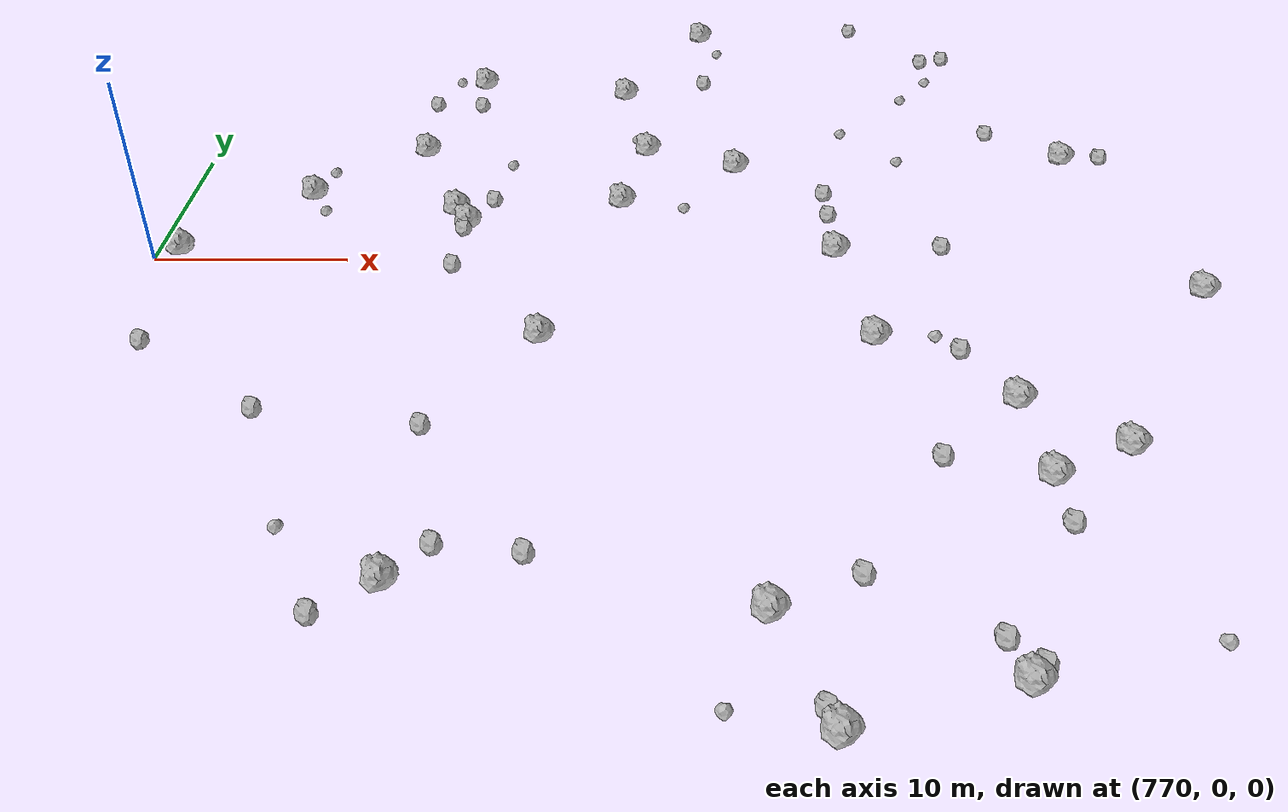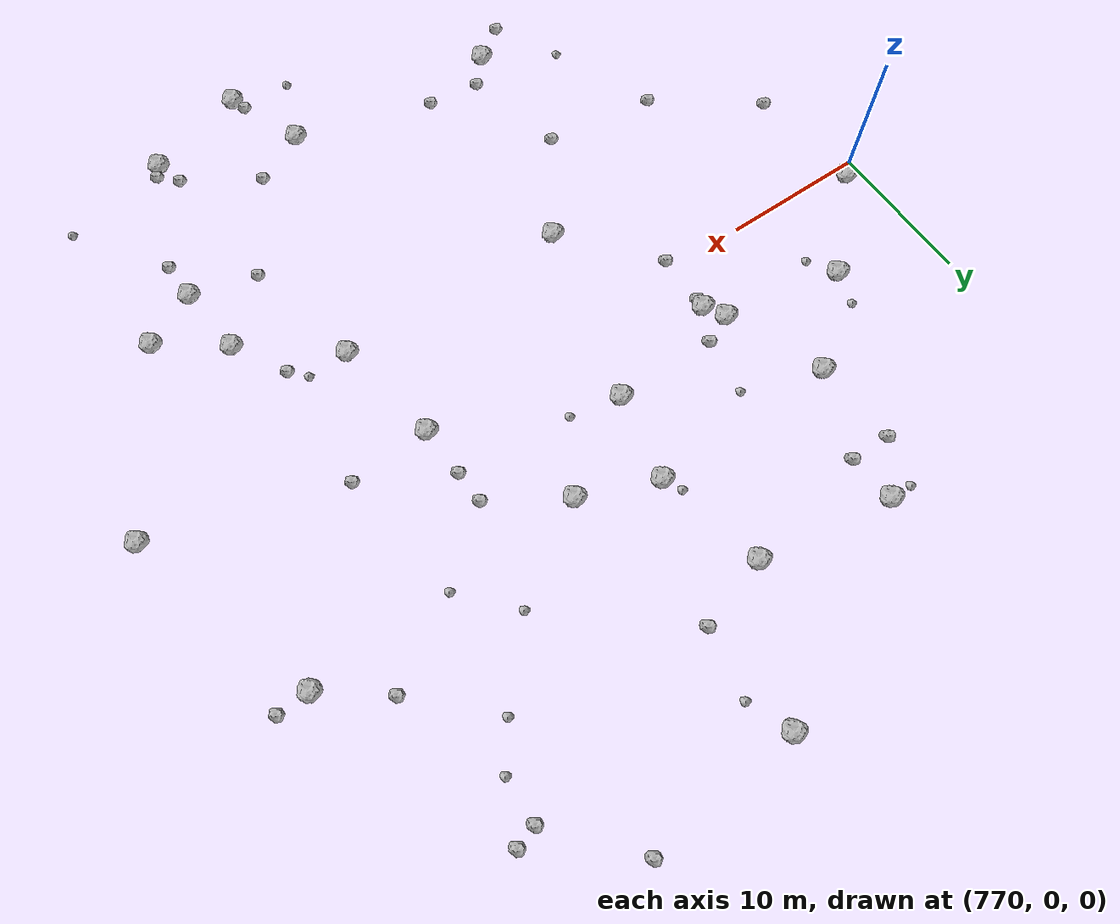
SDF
<sdf version="1.6">
 <world name="default">
  <include><uri>model://sun</uri></include>
  <model name="rock1_20_4">
   <include><uri>model://rock1</uri><pose>823.2559069120585 -2.596864467088132 0.5 0 0 0</pose></include>
  </model>
  <model name="rock1_20_5">
   <include><uri>model://rock1</uri><pose>812.8263194476505 -15.99864490898208 0.5 0 0 0</pose></include>
  </model>
  <model name="rock1_20_6">
   <include><uri>model://rock1</uri><pose>793.9653726501089 5.703952775495779 0.5 0 0 0</pose></include>
  </model>
  <model name="rock1_20_7">
   <include><uri>model://rock1</uri><pose>812.3350137914671 -11.10938687400402 0.5 0 0 0</pose></include>
  </model>
  <model name="rock1_20_8">
   <include><uri>model://rock1</uri><pose>819.229721864557 10.730514072044272 0.5 0 0 0</pose></include>
  </model>
  <model name="rock1_20_9">
   <include><uri>model://rock1</uri><pose>800.689277612058 -23.288503206439763 0.5 0 0 0</pose></include>
  </model>
  <model name="rock1_20_10">
   <include><uri>model://rock1</uri><pose>805.2654560036882 0.877340240315732 0.5 0 0 0</pose></include>
  </model>
  <model name="rock1_20_11">
   <include><uri>model://rock1</uri><pose>786.0456791769195 -21.970172898744746 0.5 0 0 0</pose></include>
  </model>
  <model name="rock1_20_12">
   <include><uri>model://rock1</uri><pose>790.5698716415069 -6.581684370866679 0.5 0 0 0</pose></include>
  </model>
  <model name="rock1_20_13">
   <include><uri>model://rock1</uri><pose>776.8453769873895 6.3932226416583475 0.5 0 0 0</pose></include>
  </model>
  <model name="rock1_20_14">
   <include><uri>model://rock1</uri><pose>806.4932584238737 -6.578134991489961 0.5 0 0 0</pose></include>
  </model>
  <model name="rock1_20_15">
   <include><uri>model://rock1</uri><pose>785.7693551242712 3.4698595005772717 0.5 0 0 0</pose></include>
  </model>
  <model name="rock1_20_16">
   <include><uri>model://rock1</uri><pose>771.1538501958604 0.7724243141862033 0.5 0 0 0</pose></include>
  </model>
  <model name="rock1_20_17">
   <include><uri>model://rock1</uri><pose>798.3782782755733 27.60577497509786 0.5 0 0 0</pose></include>
  </model>
  <model name="rock1_20_18">
   <include><uri>model://rock1</uri><pose>782.3264419522695 11.341091367992725 0.5 0 0 0</pose></include>
  </model>
  <model name="rock1_20_19">
   <include><uri>model://rock1</uri><pose>809.7173998885273 -26.41661786595541 0.5 0 0 0</pose></include>
  </model>
  <model name="rock1_20_20">
   <include><uri>model://rock1</uri><pose>802.8166806389554 -28.559436708403044 0.5 0 0 0</pose></include>
  </model>
  <model name="rock1_20_21">
   <include><uri>model://rock1</uri><pose>795.2163193993674 11.570267734997039 0.5 0 0 0</pose></include>
  </model>
  <model name="rock1_20_22">
   <include><uri>model://rock1</uri><pose>816.5302764405014 -14.121059477552706 0.5 0 0 0</pose></include>
  </model>
  <model name="rock1_20_23">
   <include><uri>model://rock1</uri><pose>784.9672913062993 4.856594322118198 0.5 0 0 0</pose></include>
  </model>
  <model name="rock1_20_24">
   <include><uri>model://rock1</uri><pose>800.3034167218991 9.591371738363655 0.5 0 0 0</pose></include>
  </model>
  <model name="rock1_20_25">
   <include><uri>model://rock1</uri><pose>793.6512533485294 18.81544825593246 0.5 0 0 0</pose></include>
  </model>
  <model name="rock1_20_26">
   <include><uri>model://rock1</uri><pose>784.62792313034 20.253342199308527 0.5 0 0 0</pose></include>
  </model>
  <model name="rock2_20_0">
   <include><uri>model://rock2</uri><pose>802.4107498507577 -27.568243523620936 0.3 0 0 0</pose></include>
  </model>
  <model name="rock2_20_1">
   <include><uri>model://rock2</uri><pose>814.3270253190462 24.095840088469984 0.3 0 0 0</pose></include>
  </model>
  <model name="rock2_20_2">
   <include><uri>model://rock2</uri><pose>771.8116997189079 -7.215511297867955 0.3 0 0 0</pose></include>
  </model>
  <model name="rock2_20_3">
   <include><uri>model://rock2</uri><pose>787.6769250314698 -20.121356579609717 0.3 0 0 0</pose></include>
  </model>
  <model name="rock2_20_4">
   <include><uri>model://rock2</uri><pose>778.444148206374 -12.086703360808649 0.3 0 0 0</pose></include>
  </model>
  <model name="rock2_20_5">
   <include><uri>model://rock2</uri><pose>821.4089687729218 10.823060324388926 0.3 0 0 0</pose></include>
  </model>
  <model name="rock2_20_6">
   <include><uri>model://rock2</uri><pose>791.3010684044377 -20.525243545609143 0.3 0 0 0</pose></include>
  </model>
  <model name="rock2_20_7">
   <include><uri>model://rock2</uri><pose>786.9134847748991 5.743319513417752 0.3 0 0 0</pose></include>
  </model>
  <model name="rock2_20_8">
   <include><uri>model://rock2</uri><pose>812.9305251460507 -18.69521369651854 0.3 0 0 0</pose></include>
  </model>
  <model name="rock2_20_9">
   <include><uri>model://rock2</uri><pose>812.8670897020095 23.64334809820612 0.3 0 0 0</pose></include>
  </model>
  <model name="rock2_20_10">
   <include><uri>model://rock2</uri><pose>808.6441060609379 28.552975354981257 0.3 0 0 0</pose></include>
  </model>
  <model name="rock2_20_11">
   <include><uri>model://rock2</uri><pose>810.2532092509059 -25.66246867676014 0.3 0 0 0</pose></include>
  </model>
  <model name="rock2_20_12">
   <include><uri>model://rock2</uri><pose>815.3272225406637 13.655199732419689 0.3 0 0 0</pose></include>
  </model>
  <model name="rock2_20_13">
   <include><uri>model://rock2</uri><pose>809.1103925451516 -24.50810087832745 0.3 0 0 0</pose></include>
  </model>
  <model name="rock2_20_14">
   <include><uri>model://rock2</uri><pose>810.7788909659478 1.2111534110004953 0.3 0 0 0</pose></include>
  </model>
  <model name="rock2_20_15">
   <include><uri>model://rock2</uri><pose>805.0745773225867 6.557957662001975 0.3 0 0 0</pose></include>
  </model>
  <model name="rock2_20_16">
   <include><uri>model://rock2</uri><pose>786.0408703290403 -13.118631933677975 0.3 0 0 0</pose></include>
  </model>
  <model name="rock2_20_17">
   <include><uri>model://rock2</uri><pose>808.3538331454048 -14.871971874229201 0.3 0 0 0</pose></include>
  </model>
  <model name="rock2_20_18">
   <include><uri>model://rock2</uri><pose>783.6747934356281 -23.62215514937469 0.3 0 0 0</pose></include>
  </model>
  <model name="rock2_20_19">
   <include><uri>model://rock2</uri><pose>805.1434838439202 4.314486681479643 0.3 0 0 0</pose></include>
  </model>
  <model name="rock2_20_20">
   <include><uri>model://rock2</uri><pose>785.622440939021 2.8132440161639494 0.3 0 0 0</pose></include>
  </model>
  <model name="rock2_20_21">
   <include><uri>model://rock2</uri><pose>810.2972965764249 -7.560013253884737 0.3 0 0 0</pose></include>
  </model>
  <model name="rock2_20_22">
   <include><uri>model://rock2</uri><pose>804.3083255666377 -21.500343348521824 0.3 0 0 0</pose></include>
  </model>
  <model name="rock2_20_23">
   <include><uri>model://rock2</uri><pose>784.7701586677163 17.084864653309317 0.3 0 0 0</pose></include>
  </model>
  <model name="rock2_20_24">
   <include><uri>model://rock2</uri><pose>785.5355235546039 -0.669280824771203 0.3 0 0 0</pose></include>
  </model>
  <model name="rock2_20_25">
   <include><uri>model://rock2</uri><pose>798.5315110605754 20.32227412616308 0.3 0 0 0</pose></include>
  </model>
  <model name="rock2_20_26">
   <include><uri>model://rock2</uri><pose>781.9921812516012 17.14812735891259 0.3 0 0 0</pose></include>
  </model>
  <model name="rock3_20_0">
   <include><uri>model://rock3</uri><pose>812.7380421269087 20.640413865111796 0.2 0 0 0</pose></include>
  </model>
  <model name="rock3_20_1">
   <include><uri>model://rock3</uri><pose>809.6105984369468 10.250015131310931 0.2 0 0 0</pose></include>
  </model>
  <model name="rock3_20_2">
   <include><uri>model://rock3</uri><pose>782.9949923177102 20.339187103253224 0.2 0 0 0</pose></include>
  </model>
  <model name="rock3_20_3">
   <include><uri>model://rock3</uri><pose>797.3450951834932 4.9956708418856905 0.2 0 0 0</pose></include>
  </model>
  <model name="rock3_20_4">
   <include><uri>model://rock3</uri><pose>781.3235216818082 -19.248977184800022 0.2 0 0 0</pose></include>
  </model>
  <model name="rock3_20_5">
   <include><uri>model://rock3</uri><pose>794.5545108496489 12.797875443962504 0.2 0 0 0</pose></include>
  </model>
  <model name="rock3_20_6">
   <include><uri>model://rock3</uri><pose>810.8321127666477 18.07736743671208 0.2 0 0 0</pose></include>
  </model>
  <model name="rock3_20_7">
   <include><uri>model://rock3</uri><pose>806.6554334503237 13.589399181119667 0.2 0 0 0</pose></include>
  </model>
  <model name="rock3_20_8">
   <include><uri>model://rock3</uri><pose>777.4685555984029 8.669220471663067 0.2 0 0 0</pose></include>
  </model>
  <model name="rock3_20_9">
   <include><uri>model://rock3</uri><pose>809.2991638252142 -6.530254119727402 0.2 0 0 0</pose></include>
  </model>
  <model name="rock3_20_10">
   <include><uri>model://rock3</uri><pose>817.0593657423063 -24.610509456428815 0.2 0 0 0</pose></include>
  </model>
  <model name="rock3_20_11">
   <include><uri>model://rock3</uri><pose>787.4942364057097 9.599648658313086 0.2 0 0 0</pose></include>
  </model>
  <model name="rock3_20_12">
   <include><uri>model://rock3</uri><pose>798.8832635694307 -27.768410922597848 0.2 0 0 0</pose></include>
  </model>
  <model name="rock3_20_13">
   <include><uri>model://rock3</uri><pose>777.8349558521285 4.518530956821536 0.2 0 0 0</pose></include>
  </model>
  <model name="rock3_20_14">
   <include><uri>model://rock3</uri><pose>799.4289197665669 24.805450714642475 0.2 0 0 0</pose></include>
  </model>
 </world>
</sdf>
